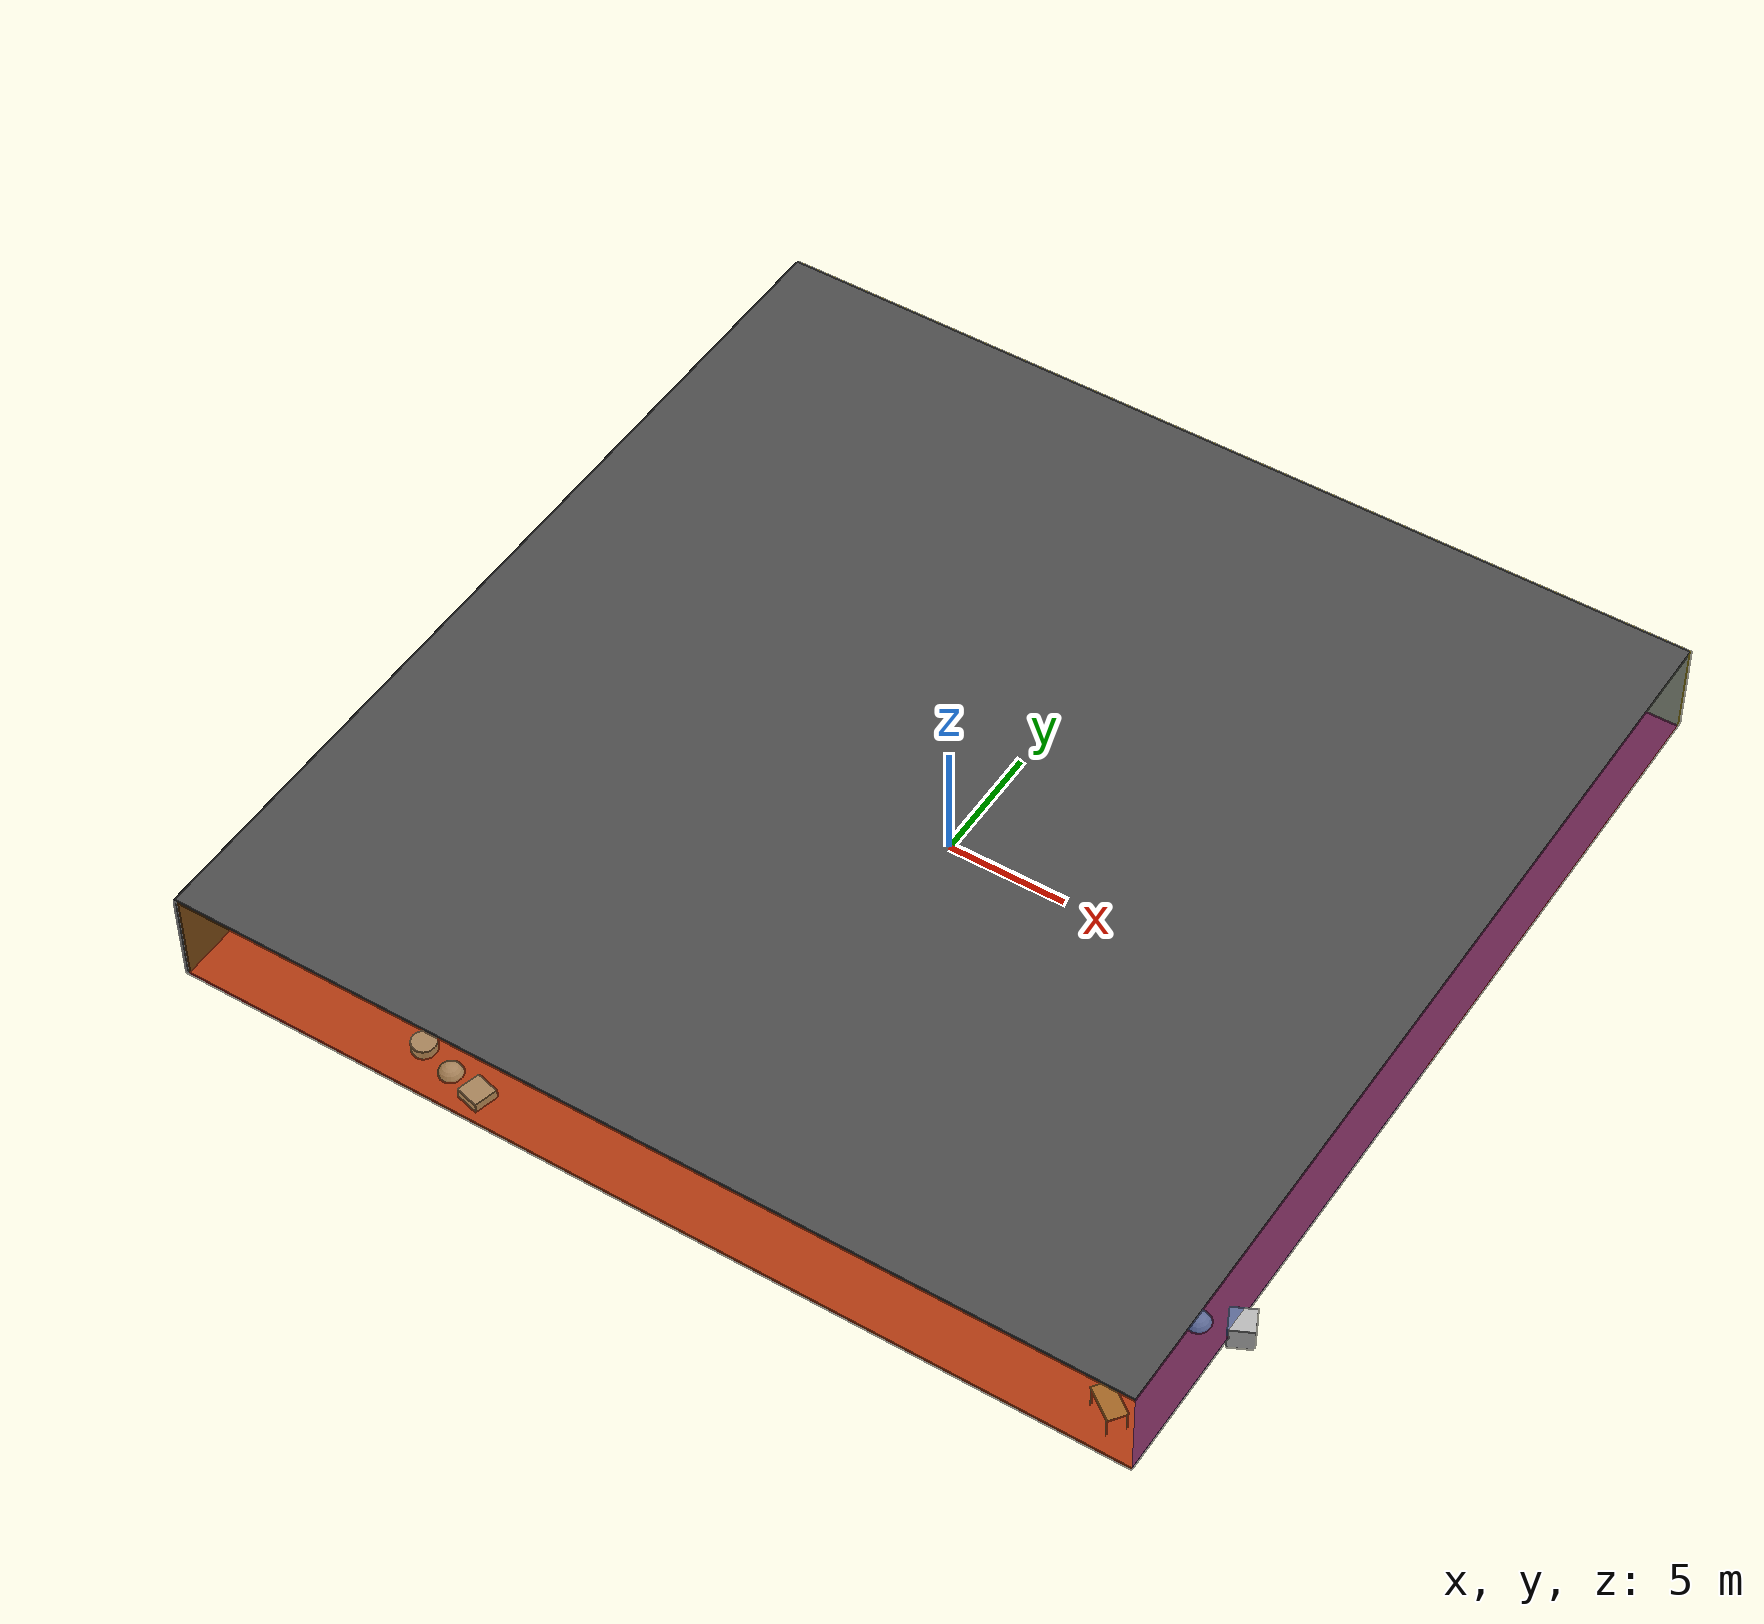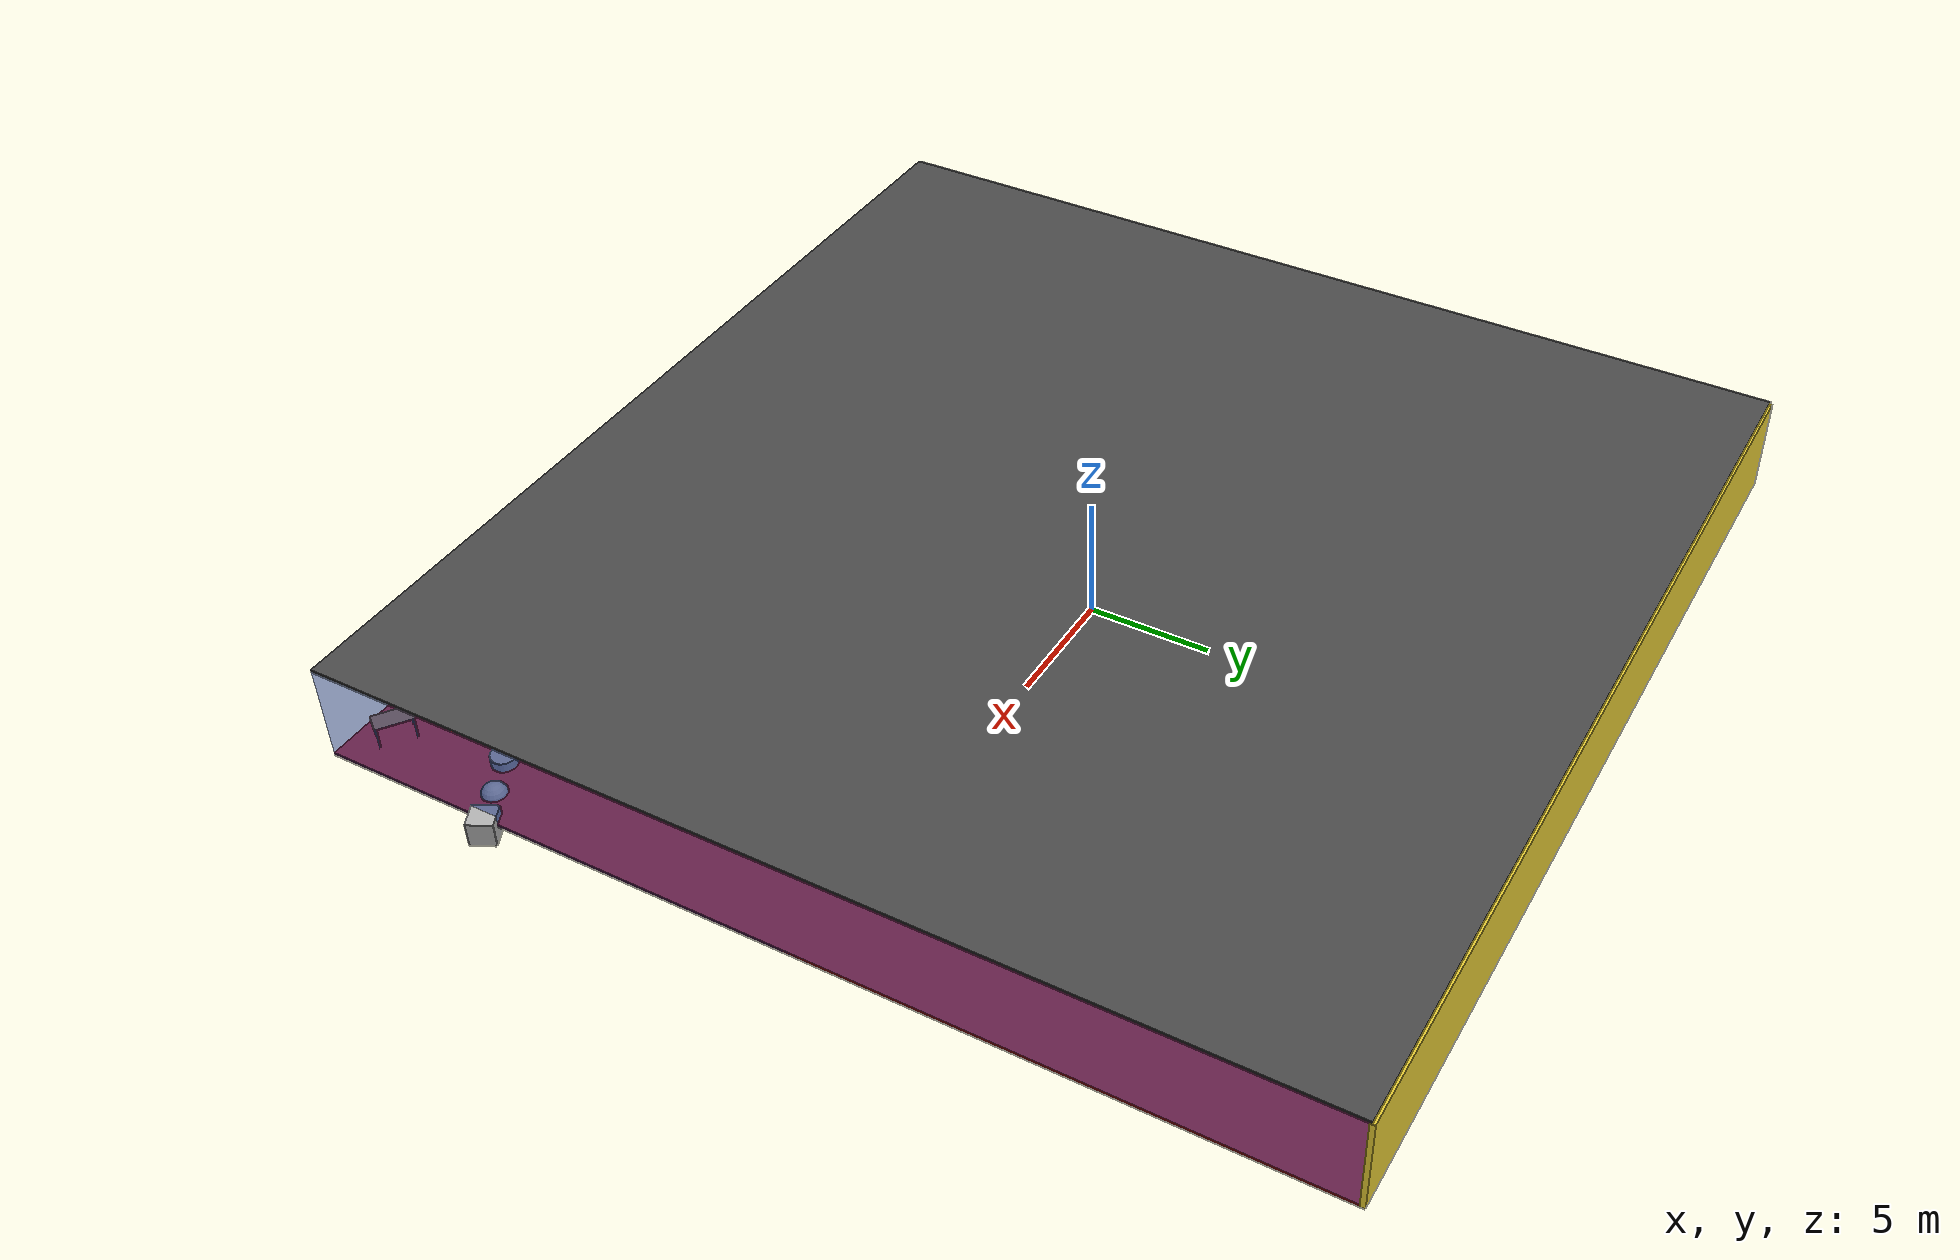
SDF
<sdf version="1.4">
 <world name="default">
  <physics type="ode">
   <max_step_size>0.001</max_step_size>
   <real_time_factor>1</real_time_factor>
   <real_time_update_rate>1000</real_time_update_rate>
   <gravity>0 0 -9.8</gravity>
  </physics>
  <scene><ambient>0.4 0.4 0.4 1</ambient><background>0.7 0.7 0.7 1</background><shadows>1</shadows></scene>
  <model name="Surrounding">
   <static>1</static>
   <link name="Ceiling">
    <collision name="Ceiling_Collision"><geometry><box><size>40 40 0.1</size></box></geometry></collision>
    <visual name="Ceiling_Visual">
     <geometry><box><size>40 40 0.1</size></box></geometry>
     <material>
      <script><uri>file://media/materials/scripts/gazebo.material</uri><name>Gazebo/Road</name></script>
     </material>
    </visual>
    <pose>0 0 4.05 0 0 0</pose>
   </link>
   <link name="Wall_South">
    <collision name="Wall_South_Collision">
     <geometry><box><size>40 0 4</size></box></geometry>
     <pose>0 0 2 0 -0 0</pose>
    </collision>
    <visual name="Wall_South_Visual">
     <pose>0 0 2 0 -0 0</pose>
     <geometry><box><size>40 0 4</size></box></geometry>
     <material>
      <script>
       <uri>file://media/materials/scripts/gazebo.material</uri>
       <name>Gazebo/OrangeTransparent</name>
      </script>
     </material>
    </visual>
    <velocity_decay><linear>0</linear><angular>0</angular></velocity_decay>
    <pose>0 -20 0 0 -0 0</pose>
   </link>
   <link name="Wall_East">
    <collision name="Wall_21_Collision">
     <geometry><box><size>40 0 4</size></box></geometry>
     <pose>0 0 2 0 -0 0</pose>
    </collision>
    <visual name="Wall_21_Visual">
     <pose>0 0 2 0 -0 0</pose>
     <geometry><box><size>40 0 4</size></box></geometry>
     <material>
      <script><uri>file://media/materials/scripts/gazebo.material</uri><name>Gazebo/BlueTransparent</name></script>
     </material>
    </visual>
    <velocity_decay><linear>0</linear><angular>0</angular></velocity_decay>
    <pose>20 0 0 0 -0 1.5708</pose>
   </link>
   <link name="Wall_North">
    <collision name="Wall_22_Collision">
     <geometry><box><size>40 0.2 4</size></box></geometry>
     <pose>0 0 2 0 -0 0</pose>
    </collision>
    <visual name="Wall_22_Visual">
     <pose>0 0 2 0 -0 0</pose>
     <geometry><box><size>40 0.2 4</size></box></geometry>
     <material>
      <script><uri>file://media/materials/scripts/gazebo.material</uri><name>Gazebo/ZincYellow</name></script>
     </material>
    </visual>
    <velocity_decay><linear>0</linear><angular>0</angular></velocity_decay>
    <pose>0 20 0 0 -0 0</pose>
   </link>
   <link name="Wall_West">
    <collision name="Wall_23_Collision">
     <geometry><box><size>40 0.2 4</size></box></geometry>
     <pose>0 0 2 0 -0 0</pose>
    </collision>
    <visual name="Wall_23_Visual">
     <pose>0 0 2 0 -0 0</pose>
     <geometry><box><size>40 0.2 4</size></box></geometry>
     <material>
      <script><uri>file://media/materials/scripts/gazebo.material</uri><name>Gazebo/Black</name></script>
     </material>
    </visual>
    <velocity_decay><linear>0</linear><angular>0</angular></velocity_decay>
    <pose>-20 0 0 0 0 -1.5708</pose>
   </link>
   <link name="Ground_link">
    <collision name="collision">
     <pose>0 0 .05 0 -0 0</pose>
     <geometry><box><size>40 40 0.1</size></box></geometry>
    </collision>
    <visual name="visual">
     <pose>0 0 .05 0 -0 0</pose>
     <geometry><box><size>40 40 0.1</size></box></geometry>
     <material>
      <script><uri>file://media/materials/scripts/gazebo.material</uri><name>Gazebo/Red</name></script>
     </material>
    </visual>
   </link>
   <static>1</static>
  </model>
  <spherical_coordinates>
   <surface_model>EARTH_WGS84</surface_model>
   <latitude_deg>0</latitude_deg>
   <longitude_deg>0</longitude_deg>
   <elevation>0</elevation>
   <heading_deg>0</heading_deg>
  </spherical_coordinates>
  <light name="lightball_0" type="diffuse">
   <diffuse>0.8 0.8 0.8 1</diffuse>
   <specular>0.2 0.2 0.2 1</specular>
   <attenuation>
    <range>100</range>
    <constant>0.7</constant>
    <linear>0.01</linear>
    <quadratic>0.001</quadratic>
   </attenuation>
   <direction>-0.5 0.1 -0.9</direction>
   <pose>18.7320366542 -18.1679424256 1.15447391193 0 0 0</pose>
  </light>
  <light name="lightball_1" type="diffuse">
   <diffuse>0.8 0.8 0.8 1</diffuse>
   <specular>0.2 0.2 0.2 1</specular>
   <attenuation>
    <range>100</range>
    <constant>0.7</constant>
    <linear>0.01</linear>
    <quadratic>0.001</quadratic>
   </attenuation>
   <direction>-0.5 0.1 -0.9</direction>
   <pose>-7.28301658009 -0.3427263132 1.92951151469 0 0 0</pose>
  </light>
  <include>
   <uri>model://robocup_3Dsim_goal</uri>
   <pose>-13.8317922857 8.6499085497 0 0 0 2.57252546529</pose>
  </include>
  <include><uri>model://table</uri><pose>-10.914055446 -10.8968437971 0 0 0 2.11719770435</pose></include>
  <include>
   <uri>model://robocup_3Dsim_goal</uri>
   <pose>-12.3659097182 3.02618429754 0 0 0 2.27325026256</pose>
  </include>
  <include>
   <uri>model://textured_shapes</uri>
   <pose>-9.17295702885 -18.6327244635 0 0 0 1.31484111192</pose>
  </include>
  <include>
   <uri>model://robocup_3Dsim_goal</uri>
   <pose>-9.52997279977 -14.3536441816 0 0 0 2.63232514071</pose>
  </include>
  <include><uri>model://cabinet</uri><pose>-8.97394176728 -10.6189313634 0 0 0 0.522332405978</pose></include>
  <include><uri>model://cabinet</uri><pose>-9.43875347471 -4.53694458377 0 0 0 2.9710286304</pose></include>
  <include>
   <uri>model://textured_shapes</uri>
   <pose>-7.38100792653 3.71258410803 0 0 0 2.96255005819</pose>
  </include>
  <include>
   <uri>model://construction_cone</uri>
   <pose>-5.56857532416 -11.3840340867 0 0 0 0.557391556137</pose>
  </include>
  <include><uri>model://cabinet</uri><pose>-6.0961430673 -1.59019358158 0 0 0 1.87921519763</pose></include>
  <include>
   <uri>model://robocup_3Dsim_goal</uri>
   <pose>-6.57186992391 2.82177452803 0 0 0 2.01180145763</pose>
  </include>
  <include><uri>model://cabinet</uri><pose>-4.59460895749 18.0555572087 0 0 0 2.66811938242</pose></include>
  <include><uri>model://table</uri><pose>-2.1998675211 -14.3257101656 0 0 0 1.38530161107</pose></include>
  <include>
   <uri>model://construction_cone</uri>
   <pose>-3.47012282359 -11.3290845724 0 0 0 2.76611838615</pose>
  </include>
  <include><uri>model://cabinet</uri><pose>-2.27826312874 6.91543984164 0 0 0 0.753166306219</pose></include>
  <include><uri>model://cabinet</uri><pose>-0.268339466233 -16.4782552256 0 0 0 1.1603270458</pose></include>
  <include><uri>model://cabinet</uri><pose>-0.540314411779 -14.5711285245 0 0 0 0.522263591781</pose></include>
  <include><uri>model://cabinet</uri><pose>-0.331586067657 3.96360397833 0 0 0 2.32721878028</pose></include>
  <include><uri>model://cabinet</uri><pose>2.87190293503 -7.61107265124 0 0 0 2.68343013809</pose></include>
  <include>
   <uri>model://robocup_3Dsim_goal</uri>
   <pose>4.68022472348 12.6140306036 0 0 0 0.158893101841</pose>
  </include>
  <include><uri>model://cabinet</uri><pose>5.73305272022 -8.72783543096 0 0 0 1.14055541294</pose></include>
  <include>
   <uri>model://robocup_3Dsim_goal</uri>
   <pose>7.07194519729 -2.07805287196 0 0 0 2.36486591581</pose>
  </include>
  <include>
   <uri>model://robocup_3Dsim_goal</uri>
   <pose>7.66465596286 0.936947837397 0 0 0 2.46478223151</pose>
  </include>
  <include>
   <uri>model://textured_shapes</uri>
   <pose>5.93830253478 12.404243053 0 0 0 2.76865168448</pose>
  </include>
  <include><uri>model://cabinet</uri><pose>6.94954336809 18.5987239236 0 0 0 2.68114852085</pose></include>
  <include><uri>model://table</uri><pose>8.3668948286 10.1302629802 0 0 0 0.231471170978</pose></include>
  <include><uri>model://table</uri><pose>12.1023944847 -10.9583890542 0 0 0 0.0669752606034</pose></include>
  <include>
   <uri>model://robocup_3Dsim_goal</uri>
   <pose>12.2437688369 11.4018442984 0 0 0 2.15276803346</pose>
  </include>
  <include>
   <uri>model://robocup_3Dsim_goal</uri>
   <pose>11.9546496147 17.5033319452 0 0 0 3.02551102213</pose>
  </include>
  <include>
   <uri>model://robocup_3Dsim_goal</uri>
   <pose>15.777658708 -3.62136490614 0 0 0 2.20163520827</pose>
  </include>
  <include>
   <uri>model://robocup_3Dsim_goal</uri>
   <pose>15.2910145394 0.908327723913 0 0 0 1.12879919114</pose>
  </include>
  <include><uri>model://table</uri><pose>14.567438581 10.3957220039 0 0 0 2.93922011619</pose></include>
  <include>
   <uri>model://robocup_3Dsim_goal</uri>
   <pose>15.8964959084 18.3035998216 0 0 0 0.361429624647</pose>
  </include>
  <include><uri>model://table</uri><pose>18.2476604173 -18.6263170099 0 0 0 2.50971497508</pose></include>
  <include>
   <uri>model://textured_shapes</uri>
   <pose>18.8116022808 -13.6638172705 0 0 0 2.01779734207</pose>
  </include>
 </world>
</sdf>

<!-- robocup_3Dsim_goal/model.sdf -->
<sdf version="1.5">
  <model name="robocup_3d_goal">
    <static>true</static>
    <link name="left_post">
      <pose>0 1.05 0.45 0 0 0</pose>
      <collision name="collision">
        <geometry>
          <cylinder>
            <radius>0.05</radius>
            <length>0.9</length>
          </cylinder>
        </geometry>
      </collision>
      <visual name="visual">
        <geometry>
          <cylinder>
            <radius>0.05</radius>
            <length>0.9</length>
          </cylinder>
        </geometry>
        <material>
          <script>
            <uri>file://media/materials/scripts/gazebo.material</uri>
            <name>Gazebo/ZincYellow</name>
          </script>
        </material>
      </visual>
    </link>
    <link name="left_support_horiz_lower">
      <pose>0.30 1.05 0.01 0 0 0</pose>
      <collision name="collision">
        <geometry>
          <box>
            <size>0.50 0.02 0.02</size>
          </box>
        </geometry>
      </collision>
      <visual name="visual">
        <geometry>
          <box>
            <size>0.50 0.02 0.02</size>
          </box>
        </geometry>
        <material>
          <script>
            <uri>file://media/materials/scripts/gazebo.material</uri>
            <name>Gazebo/White</name>
          </script>
        </material>
      </visual>
    </link>
    <link name="left_support_horiz_upper">
      <pose>0.30 1.05 0.79 0 0 0</pose>
      <collision name="collision">
        <geometry>
          <box>
            <size>0.50 0.02 0.02</size>
          </box>
        </geometry>
      </collision>
      <visual name="visual">
        <geometry>
          <box>
            <size>0.50 0.02 0.02</size>
          </box>
        </geometry>
        <material>
          <script>
            <uri>file://media/materials/scripts/gazebo.material</uri>
            <name>Gazebo/White</name>
          </script>
        </material>
      </visual>
    </link>
    <link name="left_support_vertical">
      <pose>0.56 1.05 0.4 0 1.5708 0</pose>
      <collision name="collision">
        <geometry>
          <box>
            <size>0.80 0.02 0.02</size>
          </box>
        </geometry>
      </collision>
      <visual name="visual">
        <geometry>
          <box>
            <size>0.80 0.02 0.02</size>
          </box>
        </geometry>
        <material>
          <script>
            <uri>file://media/materials/scripts/gazebo.material</uri>
            <name>Gazebo/White</name>
          </script>
        </material>
      </visual>
    </link>
    <link name="right_support_horiz_lower">
      <pose>0.30 -1.05 0.01 0 0 0</pose>
      <collision name="collision">
        <geometry>
          <box>
            <size>0.50 0.02 0.02</size>
          </box>
        </geometry>
      </collision>
      <visual name="visual">
        <geometry>
          <box>
            <size>0.50 0.02 0.02</size>
          </box>
        </geometry>
        <material>
          <script>
            <uri>file://media/materials/scripts/gazebo.material</uri>
            <name>Gazebo/White</name>
          </script>
        </material>
      </visual>
    </link>
    <link name="right_support_horiz_upper">
      <pose>0.30 -1.05 0.79 0 0 0</pose>
      <collision name="collision">
        <geometry>
          <box>
            <size>0.50 0.02 0.02</size>
          </box>
        </geometry>
      </collision>
      <visual name="visual">
        <geometry>
          <box>
            <size>0.50 0.02 0.02</size>
          </box>
        </geometry>
        <material>
          <script>
            <uri>file://media/materials/scripts/gazebo.material</uri>
            <name>Gazebo/White</name>
          </script>
        </material>
      </visual>
    </link>
    <link name="right_support_vertical">
      <pose>0.56 -1.05 0.4 0 1.5708 0</pose>
      <collision name="collision">
        <geometry>
          <box>
            <size>0.80 0.02 0.02</size>
          </box>
        </geometry>
      </collision>
      <visual name="visual">
        <geometry>
          <box>
            <size>0.80 0.02 0.02</size>
          </box>
        </geometry>
        <material>
          <script>
            <uri>file://media/materials/scripts/gazebo.material</uri>
            <name>Gazebo/White</name>
          </script>
        </material>
      </visual>
    </link>
    <link name="center_support_horiz_lower">
      <pose>0.56 0 0.01 0 1.5708 0</pose>
      <collision name="collision">
        <geometry>
          <box>
            <size>0.02 2.08 0.02</size>
          </box>
        </geometry>
      </collision>
      <visual name="visual">
        <geometry>
          <box>
            <size>0.02 2.08 0.02</size>
          </box>
        </geometry>
        <material>
          <script>
            <uri>file://media/materials/scripts/gazebo.material</uri>
            <name>Gazebo/White</name>
          </script>
        </material>
      </visual>
    </link>
    <link name="center_support_horiz_upper">
      <pose>0.56 0 0.79 0 1.5708 0</pose>
      <collision name="collision">
        <geometry>
          <box>
            <size>0.02 2.08 0.02</size>
          </box>
        </geometry>
      </collision>
      <visual name="visual">
        <geometry>
          <box>
            <size>0.02 2.08 0.02</size>
          </box>
        </geometry>
        <material>
          <script>
            <uri>file://media/materials/scripts/gazebo.material</uri>
            <name>Gazebo/White</name>
          </script>
        </material>
      </visual>
    </link>
    <link name="right_post">
      <pose>0 -1.05 0.45 0 0 0</pose>
      <collision name="collision">
        <geometry>
          <cylinder>
            <radius>0.05</radius>
            <length>0.9</length>
          </cylinder>
        </geometry>
      </collision>
      <visual name="visual">
        <geometry>
          <cylinder>
            <radius>0.05</radius>
            <length>0.9</length>
          </cylinder>
        </geometry>
        <material>
          <script>
            <uri>file://media/materials/scripts/gazebo.material</uri>
            <name>Gazebo/ZincYellow</name>
          </script>
        </material>
      </visual>
    </link>
    <link name="crossbar">
      <pose>0 0 0.85 1.57 1.57 0</pose>
      <collision name="collision">
        <geometry>
          <cylinder>
            <radius>0.05</radius>
            <length>2.0</length>
          </cylinder>
        </geometry>
      </collision>
      <visual name="visual">
        <geometry>
          <cylinder>
            <radius>0.05</radius>
            <length>2.0</length>
          </cylinder>
        </geometry>
        <material>
          <script>
            <uri>file://media/materials/scripts/gazebo.material</uri>
            <name>Gazebo/ZincYellow</name>
          </script>
        </material>
      </visual>
    </link>
    <link name="center_net">
      <pose>0.56 0 0.40 0 0 0</pose>
      <collision name="collision">
        <geometry>
          <box>
            <size>0.01 2.1 0.80</size>
          </box>
        </geometry>
      </collision>
      <visual name="visual">
        <geometry>
          <box>
            <size>0.01 2.1 0.80</size>
          </box>
        </geometry>
        <material>
          <script>
            <uri>model://../model_source/models/robocup09_spl_field/materials/scripts/</uri>
            <uri>model://../model_source/models/robocup09_spl_field/materials/textures/</uri>
            <name>RoboCup/Net</name>
          </script>
        </material>
      </visual>
    </link>
    <link name="left_net">
      <pose>0.30 1.05 0.40 0 0 0</pose>
      <collision name="collision">
        <geometry>
          <box>
            <size>0.50 0.01 0.76</size>
          </box>
        </geometry>
      </collision>
      <visual name="visual">
        <geometry>
          <box>
            <size>0.50 0.01 0.76</size>
          </box>
        </geometry>
        <material>
          <script>
            <uri>model://../model_source/models/robocup09_spl_field/materials/scripts/</uri>
            <uri>model://../model_source/models/robocup09_spl_field/materials/textures/</uri>
            <name>RoboCup/Net</name>
          </script>
        </material>
      </visual>
    </link>
    <link name="right_net">
      <pose>0.30 -1.05 0.40 0 0 0</pose>
      <collision name="collision">
        <geometry>
          <box>
            <size>0.50 0.01 0.76</size>
          </box>
        </geometry>
      </collision>
      <visual name="visual">
        <geometry>
          <box>
            <size>0.50 0.01 0.76</size>
          </box>
        </geometry>
        <material>
          <script>
            <uri>model://../model_source/models/robocup09_spl_field/materials/scripts/</uri>
            <uri>model://../model_source/models/robocup09_spl_field/materials/textures/</uri>
            <name>RoboCup/Net</name>
          </script>
        </material>
      </visual>
    </link>
  </model>
</sdf>

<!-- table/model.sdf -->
<sdf version="1.5">
  <model name="table">
    <static>true</static>
    <link name="link">
      <collision name="surface">
        <pose>0 0 1.0 0 0 0</pose>
        <geometry>
          <box>
            <size>1.5 0.8 0.03</size>
          </box>
        </geometry>
        <surface>
          <friction>
            <ode>
              <mu>0.6</mu>
              <mu2>0.6</mu2>
            </ode>
          </friction>
        </surface>
      </collision>
      <visual name="visual1">
        <pose>0 0 1.0 0 0 0</pose>
        <geometry>
          <box>
            <size>1.5 0.8 0.03</size>
          </box>
        </geometry>
        <material>
          <script>
            <uri>model://media/materials/scripts/gazebo.material</uri>
            <name>Gazebo/Wood</name>
          </script>
        </material>
      </visual>
      <collision name="front_left_leg">
        <pose>0.68 0.38 0.5 0 0 0</pose>
        <geometry>
          <cylinder>
            <radius>0.02</radius>
            <length>1.0</length>
          </cylinder>
        </geometry>
      </collision>
      <visual name="front_left_leg">
        <pose>0.68 0.38 0.5 0 0 0</pose>
        <geometry>
          <cylinder>
            <radius>0.02</radius>
            <length>1.0</length>
          </cylinder>
        </geometry>
        <material>
          <script>
            <uri>model://media/materials/scripts/gazebo.material</uri>
            <name>Gazebo/Grey</name>
          </script>
        </material>
      </visual>
      <collision name="front_right_leg">
        <pose>0.68 -0.38 0.5 0 0 0</pose>
        <geometry>
          <cylinder>
            <radius>0.02</radius>
            <length>1.0</length>
          </cylinder>
        </geometry>
      </collision>
      <visual name="front_right_leg">
        <pose>0.68 -0.38 0.5 0 0 0</pose>
        <geometry>
          <cylinder>
            <radius>0.02</radius>
            <length>1.0</length>
          </cylinder>
        </geometry>
        <material>
          <script>
            <uri>model://media/materials/scripts/gazebo.material</uri>
            <name>Gazebo/Grey</name>
          </script>
        </material>
      </visual>
      <collision name="back_right_leg">
        <pose>-0.68 -0.38 0.5 0 0 0</pose>
        <geometry>
          <cylinder>
            <radius>0.02</radius>
            <length>1.0</length>
          </cylinder>
        </geometry>
      </collision>
      <visual name="back_right_leg">
        <pose>-0.68 -0.38 0.5 0 0 0</pose>
        <geometry>
          <cylinder>
            <radius>0.02</radius>
            <length>1.0</length>
          </cylinder>
        </geometry>
        <material>
          <script>
            <uri>model://media/materials/scripts/gazebo.material</uri>
            <name>Gazebo/Grey</name>
          </script>
        </material>
      </visual>
      <collision name="back_left_leg">
        <pose>-0.68 0.38 0.5 0 0 0</pose>
        <geometry>
          <cylinder>
            <radius>0.02</radius>
            <length>1.0</length>
          </cylinder>
        </geometry>
      </collision>
      <visual name="back_left_leg">
        <pose>-0.68 0.38 0.5 0 0 0</pose>
        <geometry>
          <cylinder>
            <radius>0.02</radius>
            <length>1.0</length>
          </cylinder>
        </geometry>
        <material>
          <script>
            <uri>model://media/materials/scripts/gazebo.material</uri>
            <name>Gazebo/Grey</name>
          </script>
        </material>
      </visual>
    </link>
  </model>
</sdf>

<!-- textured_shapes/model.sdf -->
<sdf version="1.6">
  <model name="textured_shapes">
    <pose>0 0 0.5 0 0 0</pose>
    <link name="box">
      <pose>0 -1.5 0 0 0 0</pose>
      <collision name="collision">
        <geometry>
          <box>
            <size>1 1 1</size>
          </box>
        </geometry>
      </collision>
      <visual name="visual">
        <geometry>
          <box>
            <size>1 1 1</size>
          </box>
        </geometry>
        <material>
          <script>
            <uri>model://../model_source/models/textured_shapes/materials/scripts</uri>
            <uri>model://../model_source/models/textured_shapes/materials/textures</uri>
            <name>TexturedShape/Squares</name>
          </script>
        </material>
      </visual>
    </link>
    <link name="sphere">
      <collision name="collision">
        <geometry>
          <sphere>
            <radius>0.5</radius>
          </sphere>
        </geometry>
      </collision>
      <visual name="visual">
        <geometry>
          <sphere>
            <radius>0.5</radius>
          </sphere>
        </geometry>
        <material>
          <script>
            <uri>model://../model_source/models/textured_shapes/materials/scripts</uri>
            <uri>model://../model_source/models/textured_shapes/materials/textures</uri>
            <name>TexturedShape/Squares</name>
          </script>
        </material>
      </visual>
    </link>
    <link name="cylinder">
      <pose>0 1.5 0 0 0 0</pose>
      <collision name="collision">
        <geometry>
          <cylinder>
            <radius>0.5</radius>
            <length>1</length>
          </cylinder>
        </geometry>
      </collision>
      <visual name="visual">
        <geometry>
          <cylinder>
            <radius>0.5</radius>
            <length>1</length>
          </cylinder>
        </geometry>
        <material>
          <script>
            <uri>model://../model_source/models/textured_shapes/materials/scripts</uri>
            <uri>model://../model_source/models/textured_shapes/materials/textures</uri>
            <name>TexturedShape/Squares</name>
          </script>
        </material>
      </visual>
    </link>
  </model>
</sdf>

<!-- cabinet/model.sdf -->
<sdf version="1.5">
  <model name="cabinet">
    <static>true</static>
    <link name="cabinet_bottom_plate">
      <inertial>
        <pose>0 0 -1 0 0 0</pose>
        <inertia>
          <ixx>2.050000</ixx>
          <ixy>0</ixy>
          <ixz>0</ixz>
          <iyy>2.050000</iyy>
          <iyz>0</iyz>
          <izz>2.050000</izz>
        </inertia>
        <mass>25.000000</mass>
      </inertial>
      <collision name="cabinet_bottom_plate_geom">
        <pose>0 0 0.010000 0 0 0</pose>
        <geometry>
          <box>
            <size>0.450000 0.450000 0.020000</size>
          </box>
        </geometry>
      </collision>
      <visual name="cabinet_bottom_plate_geom_visual">
        <pose>0 0 0.010000 0 0 0</pose>
        <geometry>
          <box>
            <size>0.450000 0.450000 0.020000</size>
          </box>
        </geometry>
        <material>
          <script>
            <uri>model://media/materials/scripts/gazebo.material</uri>
            <name>Gazebo/Wood</name>
          </script>
        </material>
      </visual>
      <collision name="cabinet_bottom_plate_geom_cabinet_back_plate">
        <pose>0.235000 0 0.510000 0 0 0</pose>
        <geometry>
          <box>
            <size>0.020000 0.450000 1.020000</size>
          </box>
        </geometry>
      </collision>
      <visual name="cabinet_bottom_plate_geom_cabinet_back_plate_visual">
        <pose>0.235000 0 0.510000 0 0 0</pose>
        <geometry>
          <box>
            <size>0.020000 0.450000 1.020000</size>
          </box>
        </geometry>
        <material>
          <script>
            <uri>model://media/materials/scripts/gazebo.material</uri>
            <name>Gazebo/Wood</name>
          </script>
        </material>
      </visual>
      <collision name="cabinet_bottom_plate_geom_cabinet_left_plate">
        <pose>0 0.235000 0.510000 0 0 0</pose>
        <geometry>
          <box>
            <size>0.450000 0.020000 1.020000</size>
          </box>
        </geometry>
      </collision>
      <visual name="cabinet_bottom_plate_geom_cabinet_left_plate_visual">
        <pose>0 0.235000 0.510000 0 0 0</pose>
        <geometry>
          <box>
            <size>0.450000 0.020000 1.020000</size>
          </box>
        </geometry>
        <material>
          <script>
            <uri>model://media/materials/scripts/gazebo.material</uri>
            <name>Gazebo/Wood</name>
          </script>
        </material>
      </visual>
      <collision name="cabinet_bottom_plate_geom_cabinet_middle_plate">
        <pose>0 0 0.510000 0 0 0</pose>
        <geometry>
          <box>
            <size>0.450000 0.450000 0.020000</size>
          </box>
        </geometry>
      </collision>
      <visual name="cabinet_bottom_plate_geom_cabinet_middle_plate_visual">
        <pose>0 0 0.510000 0 0 0</pose>
        <geometry>
          <box>
            <size>0.450000 0.450000 0.020000</size>
          </box>
        </geometry>
        <material>
          <script>
            <uri>model://media/materials/scripts/gazebo.material</uri>
            <name>Gazebo/Wood</name>
          </script>
        </material>
      </visual>
      <collision name="cabinet_bottom_plate_geom_cabinet_right_plate">
        <pose>0 -0.235000 0.510000 0 0 0</pose>
        <geometry>
          <box>
            <size>0.450000 0.020000 1.020000</size>
          </box>
        </geometry>
      </collision>
      <visual name="cabinet_bottom_plate_geom_cabinet_right_plate_visual">
        <pose>0 -0.235000 0.510000 0 0 0</pose>
        <geometry>
          <box>
            <size>0.450000 0.020000 1.020000</size>
          </box>
        </geometry>
        <material>
          <script>
            <uri>model://media/materials/scripts/gazebo.material</uri>
            <name>Gazebo/Wood</name>
          </script>
        </material>
      </visual>
      <collision name="cabinet_bottom_plate_geom_cabinet_top_plate">
        <pose>0 0 1.010000 0 0 0</pose>
        <geometry>
          <box>
            <size>0.450000 0.450000 0.020000</size>
          </box>
        </geometry>
      </collision>
      <visual name="cabinet_bottom_plate_geom_cabinet_top_plate_visual">
        <pose>0 0 1.010000 0 0 0</pose>
        <geometry>
          <box>
            <size>0.450000 0.450000 0.020000</size>
          </box>
        </geometry>
        <material>
          <script>
            <uri>model://media/materials/scripts/gazebo.material</uri>
            <name>Gazebo/Wood</name>
          </script>
        </material>
      </visual>
    </link>
  </model>
</sdf>

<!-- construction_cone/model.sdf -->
<sdf version="1.5">
  <model name="Construction Cone">
    <link name="link">
      <collision name="collision">
        <geometry>
          <mesh>
            <scale>10 10 10</scale>
            <uri>file://isr-testbed/construction_cone/meshes/construction_cone.dae</uri>
          </mesh>
        </geometry>
      </collision>
      <visual name="visual">
        <geometry>
          <mesh>
            <scale>10 10 10</scale>
            <uri>file://isr-testbed/construction_cone/meshes/construction_cone.dae</uri>
          </mesh>
        </geometry>
      </visual>
    </link>
  </model>
</sdf>
